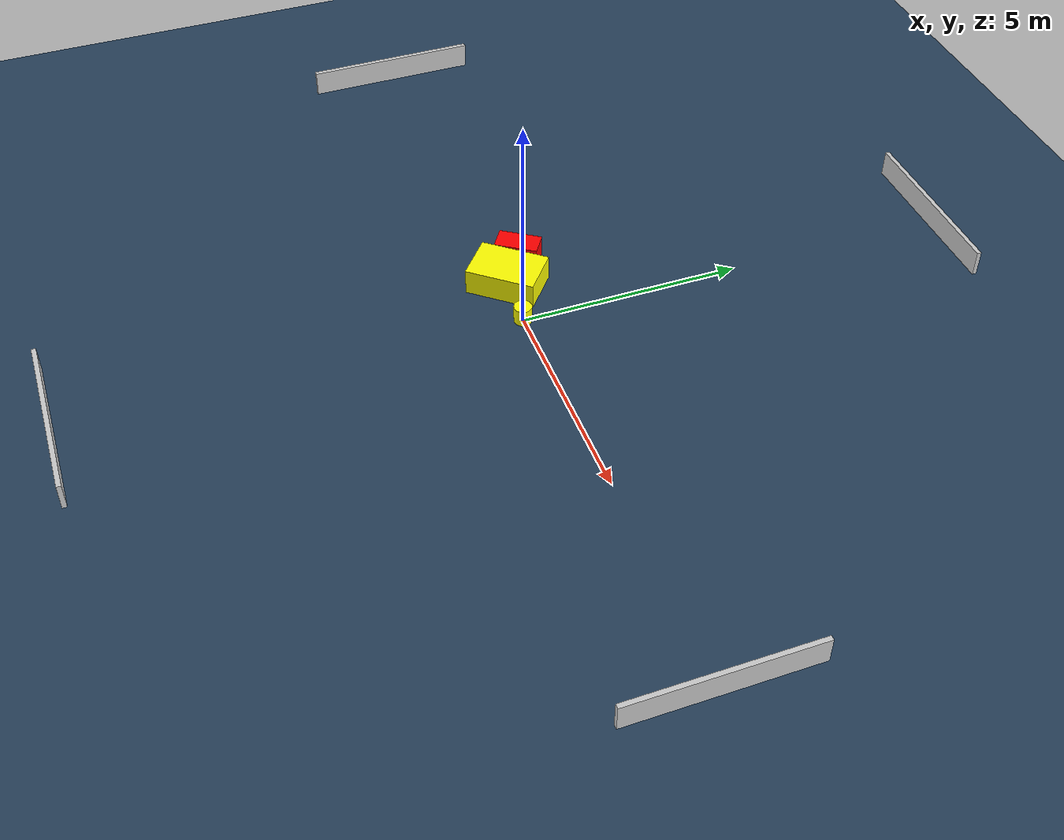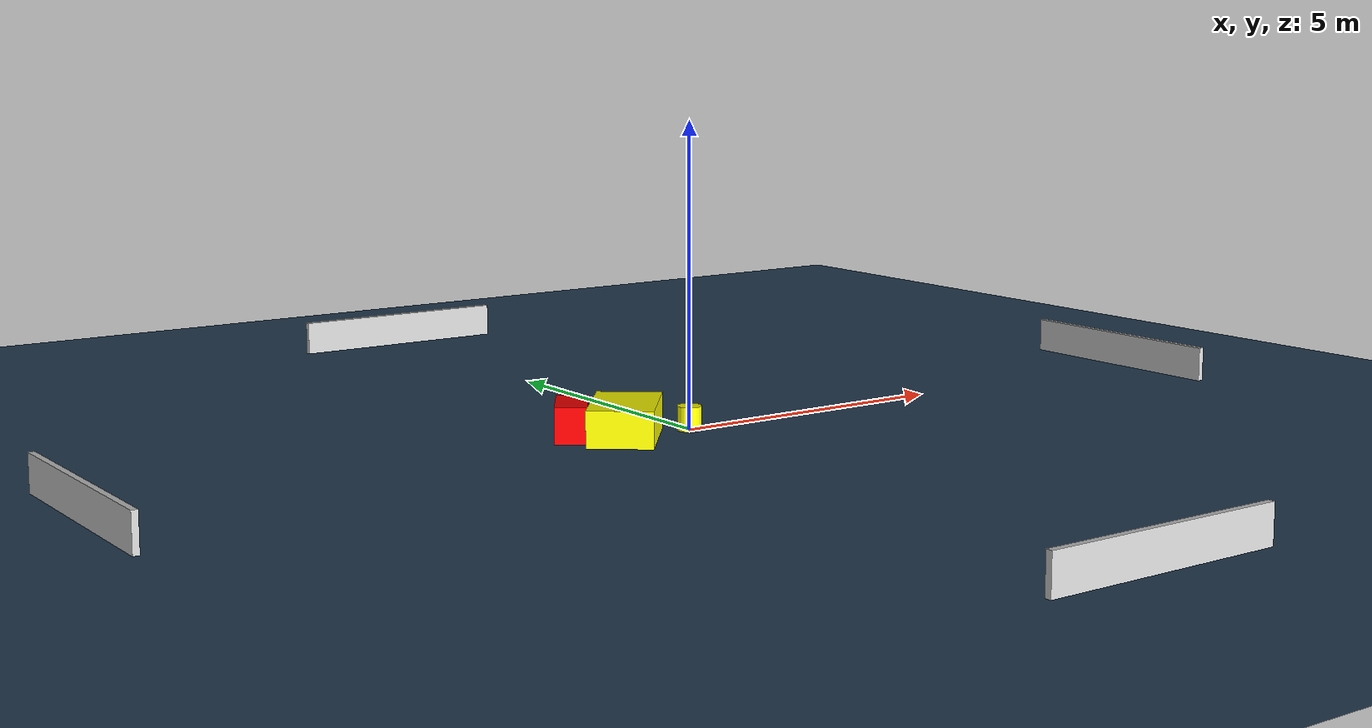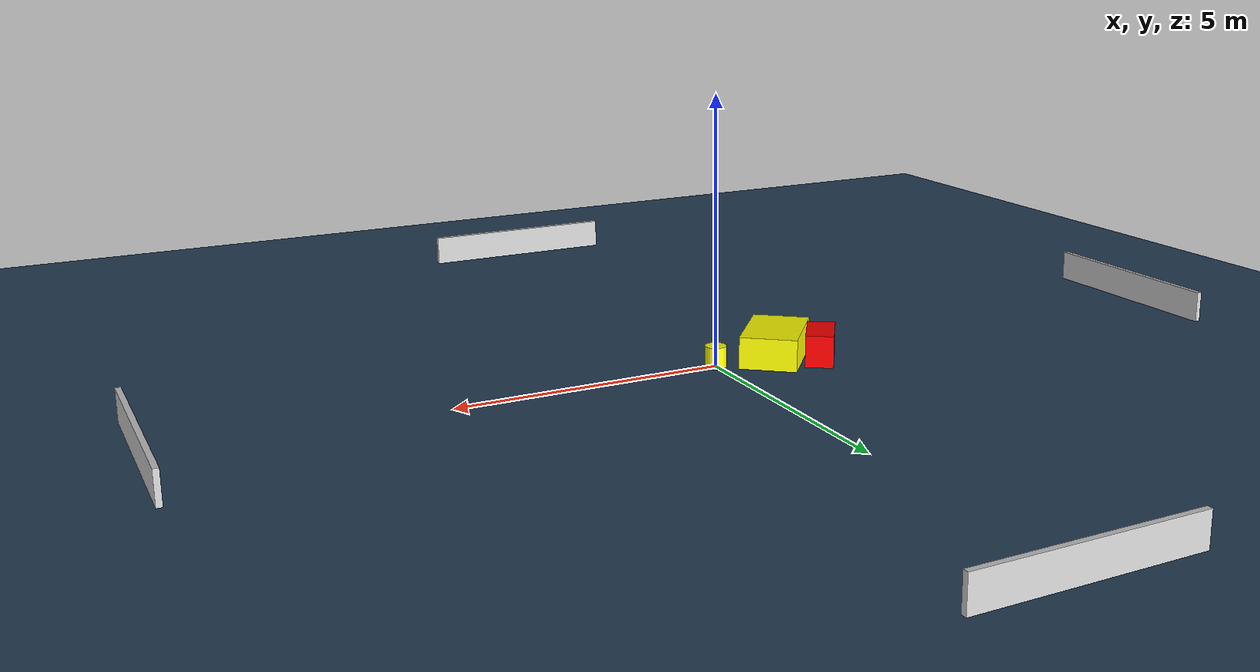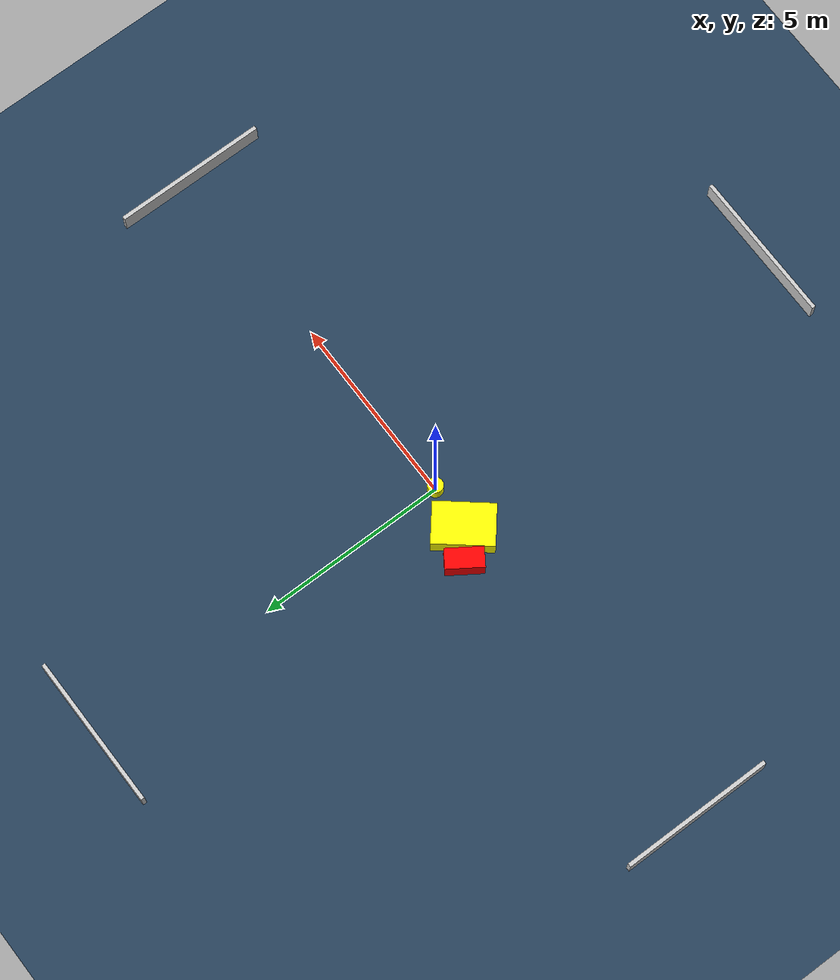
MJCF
<?xml version="1.0" ?>
<mujoco model="generated_environment">
  <option timestep="0.01" integrator="RK4" cone="elliptic"/>
  <default>
    <geom density="1"/>
  </default>
  <asset>
    <texture builtin="gradient" height="3072" name="skybox" rgb1="0.3 0.5 0.7" rgb2="0 0 0" type="skybox" width="512"/>
    <texture builtin="checker" height="300" name="groundplane" rgb1="0.2 0.3 0.4" rgb2="0.1 0.2 0.3" type="2d" width="300"/>
    <material name="groundplane" reflectance="0.2" texrepeat="5 5" texture="groundplane"/>
  </asset>
  <worldbody>
    <light dir="0 0 -1" directional="true" pos="0 0 1.5"/>
    <geom condim="3" friction="0.5 0.005 0.001" material="groundplane" name="floor" pos="0 0 0" size="0 0 0.05" type="plane"/>
    <body name="walls">
      <geom name="wall_1" condim="4" pos="-10.0 0.0 0.3" rgba="0.800000011920929 0.800000011920929 0.800000011920929 1.0" size="0.05 2.0 0.3" type="box"/>
      <geom name="wall_2" condim="4" pos="10.0 0.0 0.3" rgba="0.800000011920929 0.800000011920929 0.800000011920929 1.0" size="0.05 2.0 0.3" type="box"/>
      <geom name="wall_3" condim="4" pos="0.0 -10.0 0.3" rgba="0.800000011920929 0.800000011920929 0.800000011920929 1.0" size="2.0 0.05 0.3" type="box"/>
      <geom name="wall_4" condim="4" pos="0.0 10.0 0.3" rgba="0.800000011920929 0.800000011920929 0.800000011920929 1.0" size="2.0 0.05 0.3" type="box"/>
    </body>
    <body name="robot">
      <joint name="joint_x" type="slide" pos="0 0 0" axis="1 0 0"/>
      <joint name="joint_y" type="slide" pos="0 0 0" axis="0 1 0"/>
      <geom name="robot" type="cylinder" pos="0.0 0.0 0.2" size="0.2 0.2 0.0" mass="5.0" friction="1.0 0.005 0.0001" condim="4" rgba="1.0 1.0 0.0 1.0"/>
    </body>
    <body name="obstacle_1_movable">
      <geom name="obstacle_1_movable" condim="4" pos="-1.2076800805041086 0.07341509770258117 0.3" euler="0 0 50.50202996392254" friction="0.0 0.005 0.001" rgba="1.0 1.0 0.0 1.0" size="0.7802079669942195 0.5340977403204301 0.3" type="box" mass="0.1"/>
      <joint type="free"/>
    </body>
    <body name="obstacle_2_static">
      <geom name="obstacle_2_static" condim="4" pos="-1.8895929747094622 0.5710570967673446 0.3" euler="0 0 56.22016846772873" friction="0.0 0.005 0.001" rgba="1.0 0.0 0.0 1.0" size="0.4862028976177995 0.25954622426106233 0.3" type="box"/>
    </body>
  </worldbody>
  <actuator>
    <motor name="actuator_x" joint="joint_x" gear="1" ctrlrange="-1 1"/>
    <motor name="actuator_y" joint="joint_y" gear="1" ctrlrange="-1 1"/>
  </actuator>
</mujoco>
